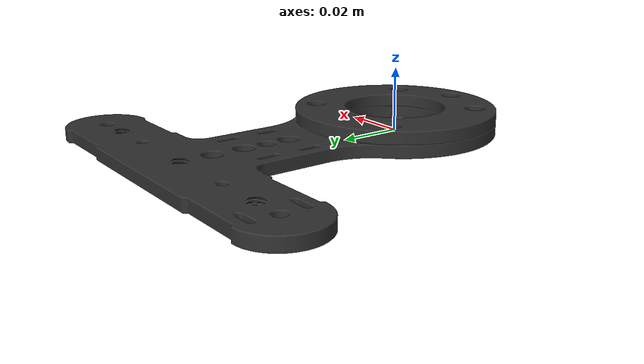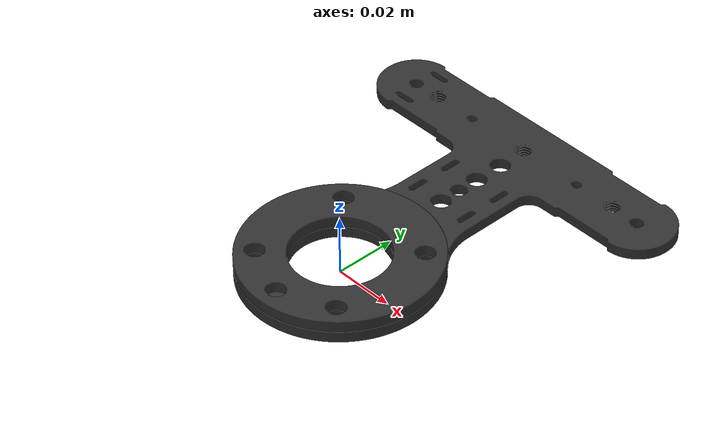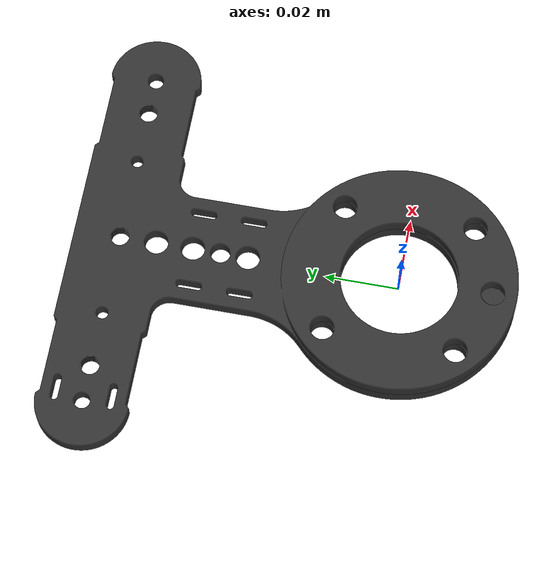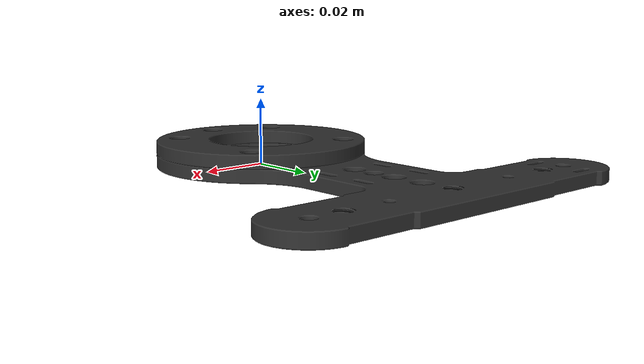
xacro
<?xml version="1.0"?>
<!-- This URDF has been used for debugging while developing the package -->
<robot xmlns:xacro="http://wiki.ros.org/xacro" name="debugger_urdf" >

  <link name="world"/>

  <xacro:include filename="$(find cam_flange_support)/urdf/cam_flange_support_macro.urdf.xacro"/>

  <xacro:cam_flange_support parent="world">
    <origin xyz="0 0 0" rpy="0 0 0"/>
  </xacro:cam_flange_support>

</robot>

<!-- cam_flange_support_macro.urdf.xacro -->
<robot xmlns:xacro="http://wiki.ros.org/xacro" name="cam_flange_support">

    <xacro:macro name="cam_flange_support" params="
        prefix:=''
        parent
        *origin
        ">

        <xacro:property name="stl_units_to_meters_factor" value="0.001" />
        <xacro:property name="pi_halves" value="1.57079633" />
        <xacro:property name="minus_pi_halves" value="-1.57079633" />

        <xacro:include filename="$(find cam_flange_support)/urdf/gazebo_material_macro.urdf.xacro"/>

        <link name="${prefix}cam_flange_support">
            <visual>
                <origin xyz="0 0 0"/>
                <geometry>
                    <mesh filename="file://$(find cam_flange_support)/meshes/visual/CamFlangeSupport.dae"
                          scale="${stl_units_to_meters_factor} ${stl_units_to_meters_factor} ${stl_units_to_meters_factor}" />
                </geometry>
            </visual>
            <collision>
                <origin xyz="0 0 0"/>
                <geometry>
                    <mesh filename="file://$(find cam_flange_support)/meshes/collision/CamFlangeSupport.stl"
                          scale="${stl_units_to_meters_factor} ${stl_units_to_meters_factor} ${stl_units_to_meters_factor}" />
                </geometry>
            </collision>
        </link>

        <link name="${prefix}cam_flange_ring_flange">
            <visual>
                <origin xyz="0 0 0"/>
                <geometry>
                    <mesh filename="file://$(find cam_flange_support)/meshes/visual/RingFlange.dae"
                          scale="${stl_units_to_meters_factor} ${stl_units_to_meters_factor} ${stl_units_to_meters_factor}" />
                </geometry>
            </visual>
            <collision>
                <origin xyz="0 0 0"/>
                <geometry>
                    <mesh filename="file://$(find cam_flange_support)/meshes/collision/RingFlange.stl"
                          scale="${stl_units_to_meters_factor} ${stl_units_to_meters_factor} ${stl_units_to_meters_factor}" />
                </geometry>
            </collision>
        </link>

        <joint name="${prefix}cam_flange_support_to_ring_flange" type="fixed">
            <parent link="${prefix}cam_flange_support" />
            <child link="${prefix}cam_flange_ring_flange" />
            <origin xyz="0 0 0" rpy="0 0 0"/>
        </joint>

        <!-- Mounting frames -->
        <link name="${prefix}cam_flange_support_mounting"/>
        <joint name="${prefix}${parent}_to_cam_flange_support_mounting" type="fixed">
            <parent link="${parent}" />
            <child link="${prefix}cam_flange_support_mounting" />
            <xacro:insert_block name="origin"/>
        </joint>

        <joint name="${prefix}cam_flange_mounting_to_support" type="fixed">
            <parent link="${prefix}cam_flange_support_mounting" />
            <child link="${prefix}cam_flange_support" />
            <origin xyz="0 0 0" rpy="${minus_pi_halves} 0 0" />
        </joint>

        <link name="${prefix}cam_flange_ring_mounting"/>

        <joint name="${prefix}cam_flange_ring_to_mounting" type="fixed">
            <parent link="${prefix}cam_flange_ring_flange" />
            <child link="${prefix}cam_flange_ring_mounting" />
            <origin xyz="0 -0.0086 0" rpy="${pi_halves} 0 0" />
        </joint>

        <!-- Additional holes in the camera support -->
        <link name="${prefix}vertical_hole_1" />
        <joint name="${prefix}cam_flange_support_to_vertical_hole_1" type="fixed">
            <parent link="${prefix}cam_flange_support" />
            <child link="${prefix}vertical_hole_1" />
            <origin xyz="0 0 0.041" rpy="0 0 0"/>
        </joint>

        <link name="${prefix}vertical_hole_2" />
        <joint name="${prefix}vertical_hole_1_to_2" type="fixed">
            <parent link="${prefix}vertical_hole_1" />
            <child link="${prefix}vertical_hole_2" />
            <origin xyz="0 0 0.0075" rpy="0 0 0"/>
        </joint>

        <link name="${prefix}vertical_hole_3" />
        <joint name="${prefix}vertical_hole_2_to_3" type="fixed">
            <parent link="${prefix}vertical_hole_2" />
            <child link="${prefix}vertical_hole_3" />
            <origin xyz="0 0 0.0075" rpy="0 0 0"/>
        </joint>

        <link name="${prefix}vertical_hole_4" />
        <joint name="${prefix}vertical_hole_3_to_4" type="fixed">
            <parent link="${prefix}vertical_hole_3" />
            <child link="${prefix}vertical_hole_4" />
            <origin xyz="0 0 0.01" rpy="0 0 0"/>
        </joint>

        <link name="${prefix}vertical_hole_5" />
        <joint name="${prefix}vertical_hole_4_to_5" type="fixed">
            <parent link="${prefix}vertical_hole_4" />
            <child link="${prefix}vertical_hole_5" />
            <origin xyz="0 0 0.01" rpy="0 0 0"/>
        </joint>

    </xacro:macro>
</robot>
